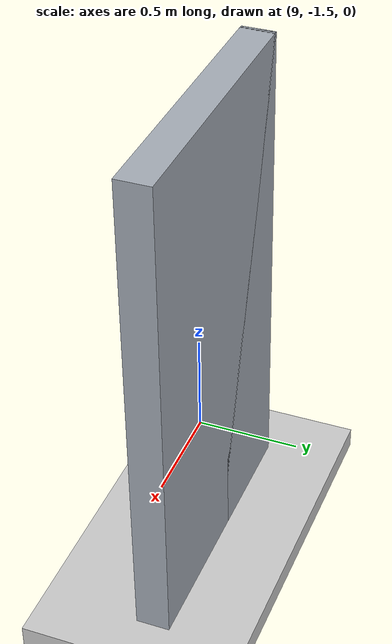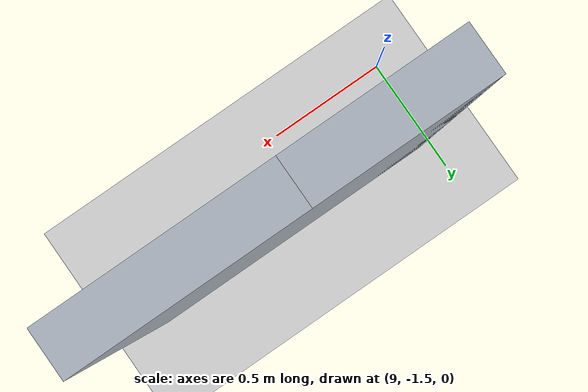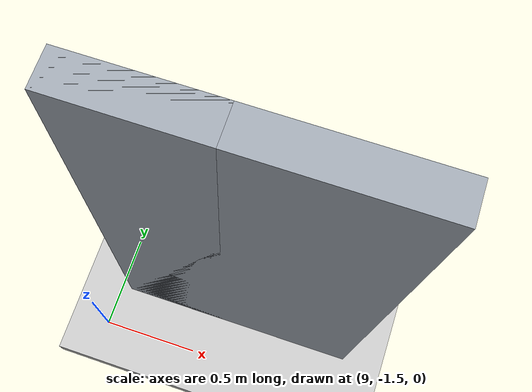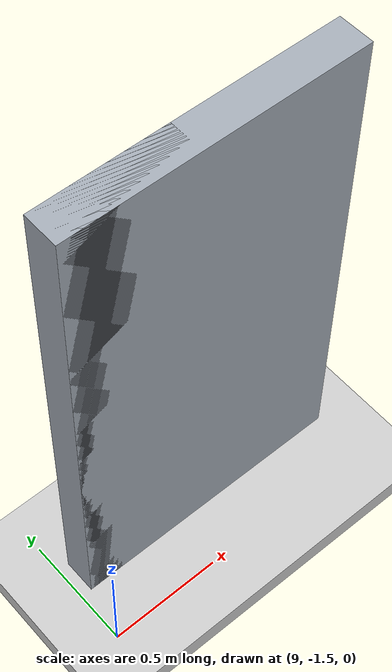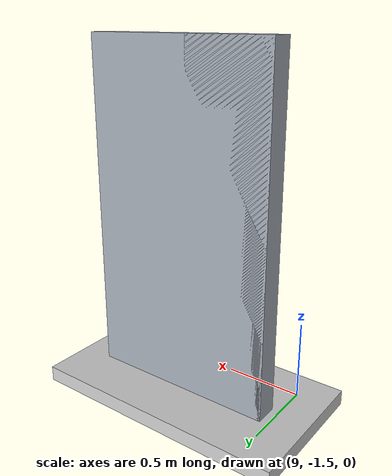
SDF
<sdf version="1.9">
 <world name="default">
  <model name="ground_plane">
   <static>true</static>
   <pose>5.15 0 -0.05 0 0 0</pose>
   <link name="body">
    <collision name="collision"><geometry><box><size>14.3 12 0.1</size></box></geometry></collision>
    <visual name="visual">
     <geometry><box><size>14.3 12 0.1</size></box></geometry>
     <material><ambient>0.8 0.8 0.8 1</ambient><diffuse>0.8 0.8 0.8 1</diffuse></material>
    </visual>
   </link>
  </model>
  <model name="jamb_-1_2_1">
   <static>true</static>
   <pose>9.325000000000001 -1.2 1.1 0 0 0</pose>
   <link name="body">
    <collision name="collision"><geometry><box><size>0.55 0.15 2.2</size></box></geometry></collision>
    <visual name="visual">
     <geometry><box><size>0.55 0.15 2.2</size></box></geometry>
     <material><ambient>0.65 0.68 0.72 1</ambient><diffuse>0.65 0.68 0.72 1</diffuse></material>
    </visual>
   </link>
  </model>
  <model name="hall_end_-1">
   <static>true</static>
   <pose>9.675 -1.2 1.1 0 0 0</pose>
   <link name="body">
    <collision name="collision"><geometry><box><size>1.25 0.15 2.2</size></box></geometry></collision>
    <visual name="visual">
     <geometry><box><size>1.25 0.15 2.2</size></box></geometry>
     <material><ambient>0.65 0.68 0.72 1</ambient><diffuse>0.65 0.68 0.72 1</diffuse></material>
    </visual>
   </link>
  </model>
 </world>
</sdf>
